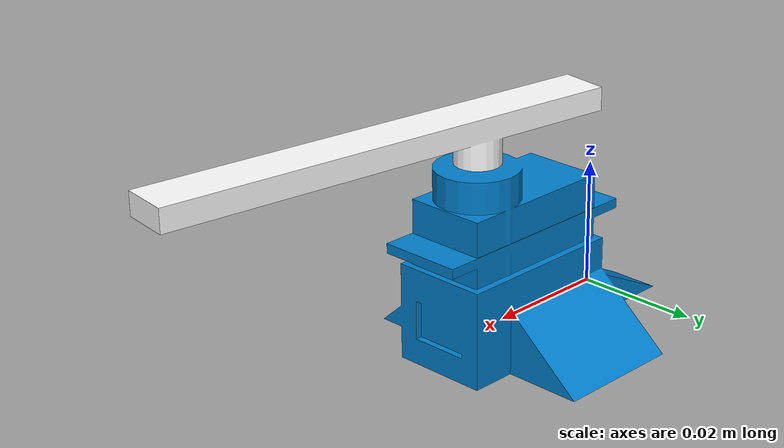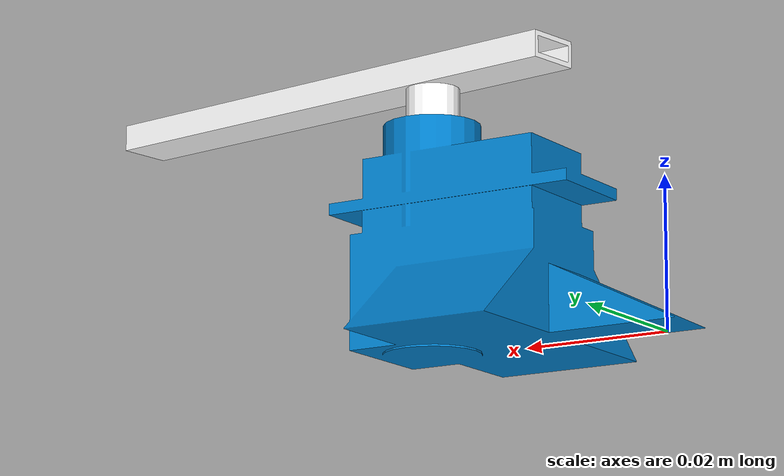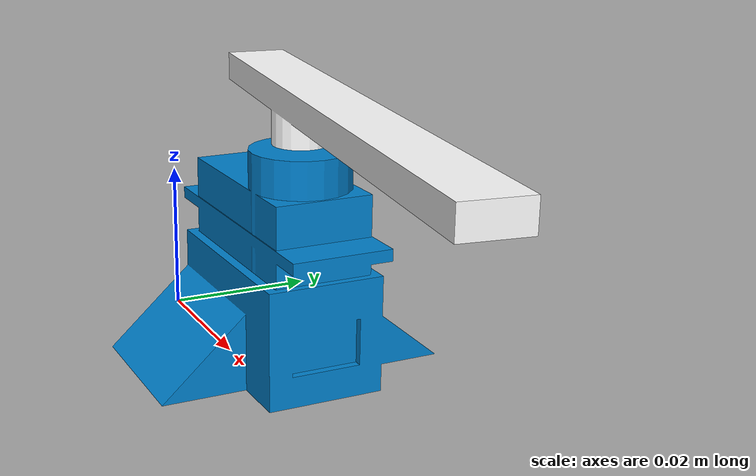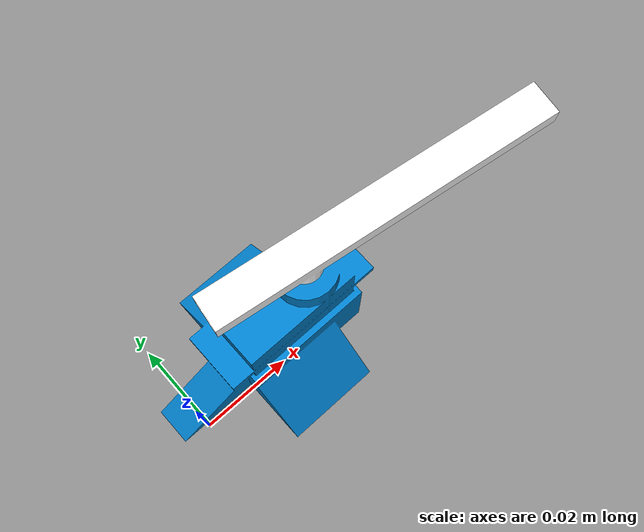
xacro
<?xml version="1.0"?>
<robot xmlns:xacro="http://www.ros.org/wiki/xacro" name="single-joint-demo-robot">
    <xacro:arg name="initial_positions_file" default="initial-joint-config.yaml" />

    <!-- Import panda urdf file -->
    <xacro:include filename="$(find single_joint_demo)/resources/single-joint-robot/single-joint-demo.urdf" />

    <!-- Import panda ros2_control description -->
    <xacro:include filename="$(find single_joint_demo)/resources/single-joint-robot/single-joint-ros2-control.xacro" />

    <xacro:single_joint_ros2-control name="FakeSystem" initial_positions_file="$(arg initial_positions_file)"/>
</robot>

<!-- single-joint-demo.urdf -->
<robot name="single-joint-demo-robot"
    xmlns:xacro="http://www.ros.org/wiki/xacro">

    <material name="cyan">
        <color rgba="0 0.5 .8 1"/>
    </material>
    <material name="white">
        <color rgba="1 1 1 1"/>
    </material>

    <link name="robot_link0">
        <visual>
            <geometry>
                <!-- Set scale to 0.001 as tinker cad STL exports are in mm units -->
                <mesh scale="0.001 0.001 0.001" filename="package://single_joint_demo/resources/single-joint-robot/base-visual.stl" />
            </geometry>
            <material name="cyan"/>
        </visual>
        <collision>
            <geometry>
                <mesh scale="0.001 0.001 0.001" filename="package://single_joint_demo/resources/single-joint-robot/base-collision.stl" />
            </geometry>
        </collision>
    </link>
    <link name="robot_link1">
        <visual>
            <geometry>
                <!-- Set scale to 0.001 as tinker cad STL exports are in mm units -->
                <mesh scale="0.001 0.001 0.001" filename="package://single_joint_demo/resources/single-joint-robot/arm-visual.stl" />
            </geometry>
            <material name="white"/>
            <origin rpy="0 0 -0.139" xyz="-0.0315 -0.00095 0" />
        </visual>
        <collision>
            <geometry>
                <mesh scale="0.001 0.001 0.001" filename="package://single_joint_demo/resources/single-joint-robot/arm-collision.stl" />
            </geometry>
        </collision>
    </link>
    <joint name="joint1" type="revolute">
        <safety_controller k_position="0" k_velocity="40.0" soft_lower_limit="0" soft_upper_limit="2.79" />
        <origin rpy="0 0 0" xyz="0.031125 0.005125 0" />
        <parent link="robot_link0" />
        <child link="robot_link1" />
        <axis xyz="0 0 -1" />
        <limit effort="87" lower="0" upper="2.95" velocity="2.3925" />
    </joint>

</robot>
